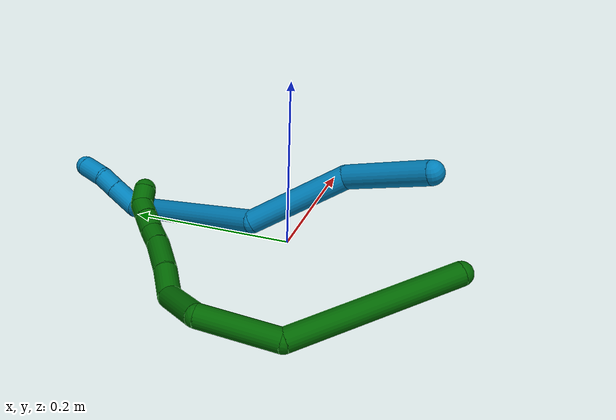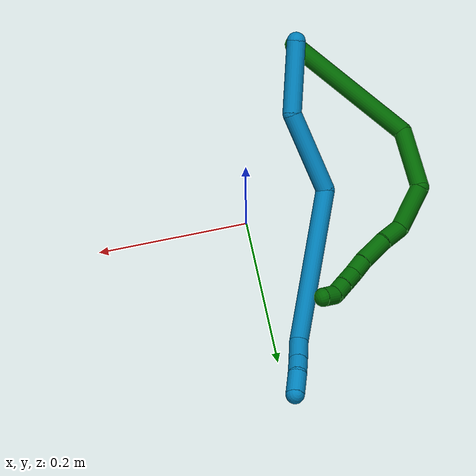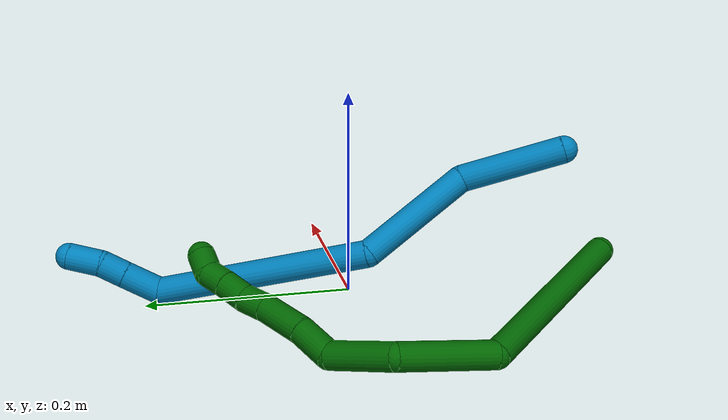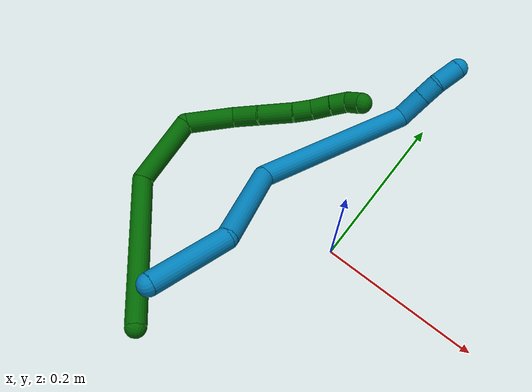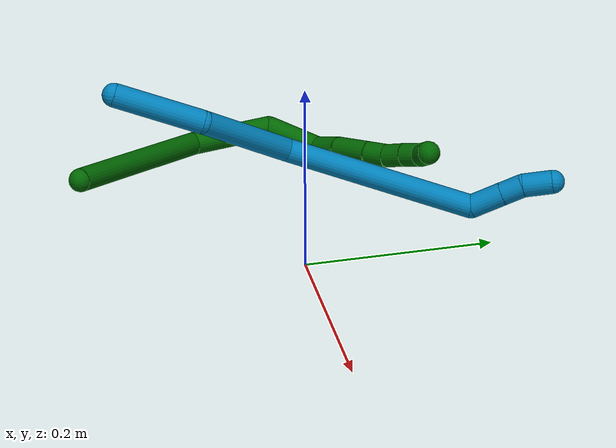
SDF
<sdf version="1.7">
 <world name="default">
  <model name="6">
   <static>0</static>
   <link name="6">
    <collision name="collision-cylinder-e_1_1_4">
     <pose>0.040332 0.073375 0.041851 -1.05244 0.44546 -0.261609</pose>
     <geometry><cylinder><radius>0.0125</radius><length>0.187212</length></cylinder></geometry>
     <surface>
      <friction><ode><mu>1.16</mu><mu2>1.16</mu2><slip1>0</slip1><slip2>0</slip2></ode></friction>
      <contact><ode><kp>1e+06</kp><kd>1</kd><max_vel>0</max_vel><min_depth>0.001</min_depth></ode></contact>
     </surface>
    </collision>
    <visual name="visual-cylinder-e_1_1_4">
     <pose>0.040332 0.073375 0.041851 -1.05244 0.44546 -0.261609</pose>
     <geometry><cylinder><radius>0.0125</radius><length>0.187212</length></cylinder></geometry>
     <material><ambient>0 0.392157 0.003922 1</ambient></material>
    </visual>
    <collision name="collision-cylinder-e_2_4_5">
     <pose>0.107637 0.17917 0.073351 -1.87987 0.670175 -0.889712</pose>
     <geometry><cylinder><radius>0.0125</radius><length>0.086851</length></cylinder></geometry>
     <surface>
      <friction><ode><mu>1.16</mu><mu2>1.16</mu2><slip1>0</slip1><slip2>0</slip2></ode></friction>
      <contact><ode><kp>1e+06</kp><kd>1</kd><max_vel>0</max_vel><min_depth>0.001</min_depth></ode></contact>
     </surface>
    </collision>
    <visual name="visual-cylinder-e_2_4_5">
     <pose>0.107637 0.17917 0.073351 -1.87987 0.670175 -0.889712</pose>
     <geometry><cylinder><radius>0.0125</radius><length>0.086851</length></cylinder></geometry>
     <material><ambient>0 0.392157 0.003922 1</ambient></material>
    </visual>
    <collision name="collision-cylinder-e_3_5_6">
     <pose>0.137129 0.231655 0.04016 -2.42076 0.082669 -0.218603</pose>
     <geometry><cylinder><radius>0.0125</radius><length>0.061011</length></cylinder></geometry>
     <surface>
      <friction><ode><mu>1.16</mu><mu2>1.16</mu2><slip1>0</slip1><slip2>0</slip2></ode></friction>
      <contact><ode><kp>1e+06</kp><kd>1</kd><max_vel>0</max_vel><min_depth>0.001</min_depth></ode></contact>
     </surface>
    </collision>
    <visual name="visual-cylinder-e_3_5_6">
     <pose>0.137129 0.231655 0.04016 -2.42076 0.082669 -0.218603</pose>
     <geometry><cylinder><radius>0.0125</radius><length>0.061011</length></cylinder></geometry>
     <material><ambient>0 0.392157 0.003922 1</ambient></material>
    </visual>
    <collision name="collision-cylinder-e_4_6_7">
     <pose>0.145161 0.253898 0.001051 -3.00854 0.324046 -2.36754</pose>
     <geometry><cylinder><radius>0.0125</radius><length>0.034632</length></cylinder></geometry>
     <surface>
      <friction><ode><mu>1.16</mu><mu2>1.16</mu2><slip1>0</slip1><slip2>0</slip2></ode></friction>
      <contact><ode><kp>1e+06</kp><kd>1</kd><max_vel>0</max_vel><min_depth>0.001</min_depth></ode></contact>
     </surface>
    </collision>
    <visual name="visual-cylinder-e_4_6_7">
     <pose>0.145161 0.253898 0.001051 -3.00854 0.324046 -2.36754</pose>
     <geometry><cylinder><radius>0.0125</radius><length>0.034632</length></cylinder></geometry>
     <material><ambient>0 0.392157 0.003922 1</ambient></material>
    </visual>
    <collision name="collision-cylinder-e_5_7_8">
     <pose>0.156084 0.261709 -0.035034 -2.86461 0.256799 -1.49429</pose>
     <geometry><cylinder><radius>0.0125</radius><length>0.042597</length></cylinder></geometry>
     <surface>
      <friction><ode><mu>1.16</mu><mu2>1.16</mu2><slip1>0</slip1><slip2>0</slip2></ode></friction>
      <contact><ode><kp>1e+06</kp><kd>1</kd><max_vel>0</max_vel><min_depth>0.001</min_depth></ode></contact>
     </surface>
    </collision>
    <visual name="visual-cylinder-e_5_7_8">
     <pose>0.156084 0.261709 -0.035034 -2.86461 0.256799 -1.49429</pose>
     <geometry><cylinder><radius>0.0125</radius><length>0.042597</length></cylinder></geometry>
     <material><ambient>0 0.392157 0.003922 1</ambient></material>
    </visual>
    <collision name="collision-cylinder-e_6_8_9">
     <pose>0.164661 0.271709 -0.065204 -2.74255 0.274669 -1.19908</pose>
     <geometry><cylinder><radius>0.0125</radius><length>0.023352</length></cylinder></geometry>
     <surface>
      <friction><ode><mu>1.16</mu><mu2>1.16</mu2><slip1>0</slip1><slip2>0</slip2></ode></friction>
      <contact><ode><kp>1e+06</kp><kd>1</kd><max_vel>0</max_vel><min_depth>0.001</min_depth></ode></contact>
     </surface>
    </collision>
    <visual name="visual-cylinder-e_6_8_9">
     <pose>0.164661 0.271709 -0.065204 -2.74255 0.274669 -1.19908</pose>
     <geometry><cylinder><radius>0.0125</radius><length>0.023352</length></cylinder></geometry>
     <material><ambient>0 0.392157 0.003922 1</ambient></material>
    </visual>
    <collision name="collision-cylinder-e_7_9_10">
     <pose>0.172749 0.278844 -0.085963 -2.88147 0.428764 -2.05965</pose>
     <geometry><cylinder><radius>0.0125</radius><length>0.023673</length></cylinder></geometry>
     <surface>
      <friction><ode><mu>1.16</mu><mu2>1.16</mu2><slip1>0</slip1><slip2>0</slip2></ode></friction>
      <contact><ode><kp>1e+06</kp><kd>1</kd><max_vel>0</max_vel><min_depth>0.001</min_depth></ode></contact>
     </surface>
    </collision>
    <visual name="visual-cylinder-e_7_9_10">
     <pose>0.172749 0.278844 -0.085963 -2.88147 0.428764 -2.05965</pose>
     <geometry><cylinder><radius>0.0125</radius><length>0.023673</length></cylinder></geometry>
     <material><ambient>0 0.392157 0.003922 1</ambient></material>
    </visual>
    <collision name="collision-cylinder-e_8_10_11">
     <pose>0.181449 0.284458 -0.105516 -2.84013 0.375654 -1.79319</pose>
     <geometry><cylinder><radius>0.0125</radius><length>0.0206</length></cylinder></geometry>
     <surface>
      <friction><ode><mu>1.16</mu><mu2>1.16</mu2><slip1>0</slip1><slip2>0</slip2></ode></friction>
      <contact><ode><kp>1e+06</kp><kd>1</kd><max_vel>0</max_vel><min_depth>0.001</min_depth></ode></contact>
     </surface>
    </collision>
    <visual name="visual-cylinder-e_8_10_11">
     <pose>0.181449 0.284458 -0.105516 -2.84013 0.375654 -1.79319</pose>
     <geometry><cylinder><radius>0.0125</radius><length>0.0206</length></cylinder></geometry>
     <material><ambient>0 0.392157 0.003922 1</ambient></material>
    </visual>
    <collision name="collision-cylinder-e_9_11_2">
     <pose>0.188242 0.284815 -0.123909 2.87869 0.305064 1.72098</pose>
     <geometry><cylinder><radius>0.0125</radius><length>0.020071</length></cylinder></geometry>
     <surface>
      <friction><ode><mu>1.16</mu><mu2>1.16</mu2><slip1>0</slip1><slip2>0</slip2></ode></friction>
      <contact><ode><kp>1e+06</kp><kd>1</kd><max_vel>0</max_vel><min_depth>0.001</min_depth></ode></contact>
     </surface>
    </collision>
    <visual name="visual-cylinder-e_9_11_2">
     <pose>0.188242 0.284815 -0.123909 2.87869 0.305064 1.72098</pose>
     <geometry><cylinder><radius>0.0125</radius><length>0.020071</length></cylinder></geometry>
     <material><ambient>0 0.392157 0.003922 1</ambient></material>
    </visual>
    <collision name="collision-sphere-2">
     <pose>0.191256 0.282328 -0.133152 0 -0 0</pose>
     <geometry><sphere><radius>0.0125</radius></sphere></geometry>
     <surface>
      <friction><ode><mu>1.16</mu><mu2>1.16</mu2><slip1>0</slip1><slip2>0</slip2></ode></friction>
      <contact><ode><kp>1e+06</kp><kd>1</kd><max_vel>0</max_vel><min_depth>0.001</min_depth></ode></contact>
     </surface>
    </collision>
    <visual name="visual-sphere-2">
     <pose>0.191256 0.282328 -0.133152 0 -0 0</pose>
     <geometry><sphere><radius>0.0125</radius></sphere></geometry>
     <material><ambient>0 0.392157 0.003922 1</ambient></material>
    </visual>
    <collision name="collision-sphere-11">
     <pose>0.185228 0.287303 -0.114665 0 -0 0</pose>
     <geometry><sphere><radius>0.0125</radius></sphere></geometry>
     <surface>
      <friction><ode><mu>1.16</mu><mu2>1.16</mu2><slip1>0</slip1><slip2>0</slip2></ode></friction>
      <contact><ode><kp>1e+06</kp><kd>1</kd><max_vel>0</max_vel><min_depth>0.001</min_depth></ode></contact>
     </surface>
    </collision>
    <visual name="visual-sphere-11">
     <pose>0.185228 0.287303 -0.114665 0 -0 0</pose>
     <geometry><sphere><radius>0.0125</radius></sphere></geometry>
     <material><ambient>0 0.392157 0.003922 1</ambient></material>
    </visual>
    <collision name="collision-sphere-10">
     <pose>0.17767 0.281613 -0.096366 0 -0 0</pose>
     <geometry><sphere><radius>0.0125</radius></sphere></geometry>
     <surface>
      <friction><ode><mu>1.16</mu><mu2>1.16</mu2><slip1>0</slip1><slip2>0</slip2></ode></friction>
      <contact><ode><kp>1e+06</kp><kd>1</kd><max_vel>0</max_vel><min_depth>0.001</min_depth></ode></contact>
     </surface>
    </collision>
    <visual name="visual-sphere-10">
     <pose>0.17767 0.281613 -0.096366 0 -0 0</pose>
     <geometry><sphere><radius>0.0125</radius></sphere></geometry>
     <material><ambient>0 0.392157 0.003922 1</ambient></material>
    </visual>
    <collision name="collision-sphere-9">
     <pose>0.167828 0.276075 -0.07556 0 -0 0</pose>
     <geometry><sphere><radius>0.0125</radius></sphere></geometry>
     <surface>
      <friction><ode><mu>1.16</mu><mu2>1.16</mu2><slip1>0</slip1><slip2>0</slip2></ode></friction>
      <contact><ode><kp>1e+06</kp><kd>1</kd><max_vel>0</max_vel><min_depth>0.001</min_depth></ode></contact>
     </surface>
    </collision>
    <visual name="visual-sphere-9">
     <pose>0.167828 0.276075 -0.07556 0 -0 0</pose>
     <geometry><sphere><radius>0.0125</radius></sphere></geometry>
     <material><ambient>0 0.392157 0.003922 1</ambient></material>
    </visual>
    <collision name="collision-sphere-4">
     <pose>0.080664 0.146749 0.083703 0 -0 0</pose>
     <geometry><sphere><radius>0.0125</radius></sphere></geometry>
     <surface>
      <friction><ode><mu>1.16</mu><mu2>1.16</mu2><slip1>0</slip1><slip2>0</slip2></ode></friction>
      <contact><ode><kp>1e+06</kp><kd>1</kd><max_vel>0</max_vel><min_depth>0.001</min_depth></ode></contact>
     </surface>
    </collision>
    <visual name="visual-sphere-4">
     <pose>0.080664 0.146749 0.083703 0 -0 0</pose>
     <geometry><sphere><radius>0.0125</radius></sphere></geometry>
     <material><ambient>0 0.392157 0.003922 1</ambient></material>
    </visual>
    <collision name="collision-sphere-1">
     <geometry><sphere><radius>0.0125</radius></sphere></geometry>
     <surface>
      <friction><ode><mu>1.16</mu><mu2>1.16</mu2><slip1>0</slip1><slip2>0</slip2></ode></friction>
      <contact><ode><kp>1e+06</kp><kd>1</kd><max_vel>0</max_vel><min_depth>0.001</min_depth></ode></contact>
     </surface>
    </collision>
    <visual name="visual-sphere-1">
     <geometry><sphere><radius>0.0125</radius></sphere></geometry>
     <material><ambient>0 0.392157 0.003922 1</ambient></material>
    </visual>
    <collision name="collision-sphere-8">
     <pose>0.161494 0.267342 -0.054849 0 -0 0</pose>
     <geometry><sphere><radius>0.0125</radius></sphere></geometry>
     <surface>
      <friction><ode><mu>1.16</mu><mu2>1.16</mu2><slip1>0</slip1><slip2>0</slip2></ode></friction>
      <contact><ode><kp>1e+06</kp><kd>1</kd><max_vel>0</max_vel><min_depth>0.001</min_depth></ode></contact>
     </surface>
    </collision>
    <visual name="visual-sphere-8">
     <pose>0.161494 0.267342 -0.054849 0 -0 0</pose>
     <geometry><sphere><radius>0.0125</radius></sphere></geometry>
     <material><ambient>0 0.392157 0.003922 1</ambient></material>
    </visual>
    <collision name="collision-sphere-5">
     <pose>0.13461 0.21159 0.062999 0 -0 0</pose>
     <geometry><sphere><radius>0.0125</radius></sphere></geometry>
     <surface>
      <friction><ode><mu>1.16</mu><mu2>1.16</mu2><slip1>0</slip1><slip2>0</slip2></ode></friction>
      <contact><ode><kp>1e+06</kp><kd>1</kd><max_vel>0</max_vel><min_depth>0.001</min_depth></ode></contact>
     </surface>
    </collision>
    <visual name="visual-sphere-5">
     <pose>0.13461 0.21159 0.062999 0 -0 0</pose>
     <geometry><sphere><radius>0.0125</radius></sphere></geometry>
     <material><ambient>0 0.392157 0.003922 1</ambient></material>
    </visual>
    <collision name="collision-sphere-6">
     <pose>0.139648 0.251721 0.017321 0 -0 0</pose>
     <geometry><sphere><radius>0.0125</radius></sphere></geometry>
     <surface>
      <friction><ode><mu>1.16</mu><mu2>1.16</mu2><slip1>0</slip1><slip2>0</slip2></ode></friction>
      <contact><ode><kp>1e+06</kp><kd>1</kd><max_vel>0</max_vel><min_depth>0.001</min_depth></ode></contact>
     </surface>
    </collision>
    <visual name="visual-sphere-6">
     <pose>0.139648 0.251721 0.017321 0 -0 0</pose>
     <geometry><sphere><radius>0.0125</radius></sphere></geometry>
     <material><ambient>0 0.392157 0.003922 1</ambient></material>
    </visual>
    <collision name="collision-sphere-7">
     <pose>0.150675 0.256076 -0.015219 0 -0 0</pose>
     <geometry><sphere><radius>0.0125</radius></sphere></geometry>
     <surface>
      <friction><ode><mu>1.16</mu><mu2>1.16</mu2><slip1>0</slip1><slip2>0</slip2></ode></friction>
      <contact><ode><kp>1e+06</kp><kd>1</kd><max_vel>0</max_vel><min_depth>0.001</min_depth></ode></contact>
     </surface>
    </collision>
    <visual name="visual-sphere-7">
     <pose>0.150675 0.256076 -0.015219 0 -0 0</pose>
     <geometry><sphere><radius>0.0125</radius></sphere></geometry>
     <material><ambient>0 0.392157 0.003922 1</ambient></material>
    </visual>
    <inertial>
     <pose>0.104785 0.17579 0.013963 0 -0 0</pose>
     <mass>0.5</mass>
     <inertia>
      <ixx>0.00036</ixx>
      <ixy>0</ixy>
      <ixz>0</ixz>
      <iyy>0.000162</iyy>
      <iyz>0</iyz>
      <izz>-0.000789</izz>
     </inertia>
    </inertial>
   </link>
   <pose>-0.111505 -0.213929 0.066166 -1.84822 -0.918501 2.05595</pose>
  </model>
  <model name="9">
   <static>0</static>
   <link name="9">
    <collision name="collision-cylinder-e_1_1_4">
     <pose>0.043448 0.017124 0.010569 -1.01782 1.13706 -0.684837</pose>
     <geometry><cylinder><radius>0.0125</radius><length>0.095763</length></cylinder></geometry>
     <surface>
      <friction><ode><mu>1.16</mu><mu2>1.16</mu2><slip1>0</slip1><slip2>0</slip2></ode></friction>
      <contact><ode><kp>1e+06</kp><kd>1</kd><max_vel>0</max_vel><min_depth>0.001</min_depth></ode></contact>
     </surface>
    </collision>
    <visual name="visual-cylinder-e_1_1_4">
     <pose>0.043448 0.017124 0.010569 -1.01782 1.13706 -0.684837</pose>
     <geometry><cylinder><radius>0.0125</radius><length>0.095763</length></cylinder></geometry>
     <material><ambient>0 0.490196 0.709804 1</ambient></material>
    </visual>
    <collision name="collision-cylinder-e_2_4_5">
     <pose>0.139647 0.024861 0.035412 0.581674 1.25759 0.428694</pose>
     <geometry><cylinder><radius>0.0125</radius><length>0.110898</length></cylinder></geometry>
     <surface>
      <friction><ode><mu>1.16</mu><mu2>1.16</mu2><slip1>0</slip1><slip2>0</slip2></ode></friction>
      <contact><ode><kp>1e+06</kp><kd>1</kd><max_vel>0</max_vel><min_depth>0.001</min_depth></ode></contact>
     </surface>
    </collision>
    <visual name="visual-cylinder-e_2_4_5">
     <pose>0.139647 0.024861 0.035412 0.581674 1.25759 0.428694</pose>
     <geometry><cylinder><radius>0.0125</radius><length>0.110898</length></cylinder></geometry>
     <material><ambient>0 0.490196 0.709804 1</ambient></material>
    </visual>
    <collision name="collision-cylinder-e_3_5_6">
     <pose>0.279054 0.06358 0.071076 -1.15243 1.02486 -0.70088</pose>
     <geometry><cylinder><radius>0.0125</radius><length>0.202789</length></cylinder></geometry>
     <surface>
      <friction><ode><mu>1.16</mu><mu2>1.16</mu2><slip1>0</slip1><slip2>0</slip2></ode></friction>
      <contact><ode><kp>1e+06</kp><kd>1</kd><max_vel>0</max_vel><min_depth>0.001</min_depth></ode></contact>
     </surface>
    </collision>
    <visual name="visual-cylinder-e_3_5_6">
     <pose>0.279054 0.06358 0.071076 -1.15243 1.02486 -0.70088</pose>
     <geometry><cylinder><radius>0.0125</radius><length>0.202789</length></cylinder></geometry>
     <material><ambient>0 0.490196 0.709804 1</ambient></material>
    </visual>
    <collision name="collision-cylinder-e_4_6_7">
     <pose>0.378235 0.121362 0.083937 -2.29317 0.770769 -1.46367</pose>
     <geometry><cylinder><radius>0.0125</radius><length>0.035956</length></cylinder></geometry>
     <surface>
      <friction><ode><mu>1.16</mu><mu2>1.16</mu2><slip1>0</slip1><slip2>0</slip2></ode></friction>
      <contact><ode><kp>1e+06</kp><kd>1</kd><max_vel>0</max_vel><min_depth>0.001</min_depth></ode></contact>
     </surface>
    </collision>
    <visual name="visual-cylinder-e_4_6_7">
     <pose>0.378235 0.121362 0.083937 -2.29317 0.770769 -1.46367</pose>
     <geometry><cylinder><radius>0.0125</radius><length>0.035956</length></cylinder></geometry>
     <material><ambient>0 0.490196 0.709804 1</ambient></material>
    </visual>
    <collision name="collision-cylinder-e_5_7_8">
     <pose>0.398821 0.137528 0.069903 -2.27439 0.758165 -1.42099</pose>
     <geometry><cylinder><radius>0.0125</radius><length>0.023446</length></cylinder></geometry>
     <surface>
      <friction><ode><mu>1.16</mu><mu2>1.16</mu2><slip1>0</slip1><slip2>0</slip2></ode></friction>
      <contact><ode><kp>1e+06</kp><kd>1</kd><max_vel>0</max_vel><min_depth>0.001</min_depth></ode></contact>
     </surface>
    </collision>
    <visual name="visual-cylinder-e_5_7_8">
     <pose>0.398821 0.137528 0.069903 -2.27439 0.758165 -1.42099</pose>
     <geometry><cylinder><radius>0.0125</radius><length>0.023446</length></cylinder></geometry>
     <material><ambient>0 0.490196 0.709804 1</ambient></material>
    </visual>
    <collision name="collision-cylinder-e_6_8_2">
     <pose>0.419355 0.152659 0.060888 -1.95653 0.928857 -1.27949</pose>
     <geometry><cylinder><radius>0.0125</radius><length>0.031148</length></cylinder></geometry>
     <surface>
      <friction><ode><mu>1.16</mu><mu2>1.16</mu2><slip1>0</slip1><slip2>0</slip2></ode></friction>
      <contact><ode><kp>1e+06</kp><kd>1</kd><max_vel>0</max_vel><min_depth>0.001</min_depth></ode></contact>
     </surface>
    </collision>
    <visual name="visual-cylinder-e_6_8_2">
     <pose>0.419355 0.152659 0.060888 -1.95653 0.928857 -1.27949</pose>
     <geometry><cylinder><radius>0.0125</radius><length>0.031148</length></cylinder></geometry>
     <material><ambient>0 0.490196 0.709804 1</ambient></material>
    </visual>
    <collision name="collision-sphere-2">
     <pose>0.431829 0.161298 0.057379 0 -0 0</pose>
     <geometry><sphere><radius>0.0125</radius></sphere></geometry>
     <surface>
      <friction><ode><mu>1.16</mu><mu2>1.16</mu2><slip1>0</slip1><slip2>0</slip2></ode></friction>
      <contact><ode><kp>1e+06</kp><kd>1</kd><max_vel>0</max_vel><min_depth>0.001</min_depth></ode></contact>
     </surface>
    </collision>
    <visual name="visual-sphere-2">
     <pose>0.431829 0.161298 0.057379 0 -0 0</pose>
     <geometry><sphere><radius>0.0125</radius></sphere></geometry>
     <material><ambient>0 0.490196 0.709804 1</ambient></material>
    </visual>
    <collision name="collision-sphere-4">
     <pose>0.086895 0.034247 0.021138 0 -0 0</pose>
     <geometry><sphere><radius>0.0125</radius></sphere></geometry>
     <surface>
      <friction><ode><mu>1.16</mu><mu2>1.16</mu2><slip1>0</slip1><slip2>0</slip2></ode></friction>
      <contact><ode><kp>1e+06</kp><kd>1</kd><max_vel>0</max_vel><min_depth>0.001</min_depth></ode></contact>
     </surface>
    </collision>
    <visual name="visual-sphere-4">
     <pose>0.086895 0.034247 0.021138 0 -0 0</pose>
     <geometry><sphere><radius>0.0125</radius></sphere></geometry>
     <material><ambient>0 0.490196 0.709804 1</ambient></material>
    </visual>
    <collision name="collision-sphere-1">
     <geometry><sphere><radius>0.0125</radius></sphere></geometry>
     <surface>
      <friction><ode><mu>1.16</mu><mu2>1.16</mu2><slip1>0</slip1><slip2>0</slip2></ode></friction>
      <contact><ode><kp>1e+06</kp><kd>1</kd><max_vel>0</max_vel><min_depth>0.001</min_depth></ode></contact>
     </surface>
    </collision>
    <visual name="visual-sphere-1">
     <geometry><sphere><radius>0.0125</radius></sphere></geometry>
     <material><ambient>0 0.490196 0.709804 1</ambient></material>
    </visual>
    <collision name="collision-sphere-8">
     <pose>0.406881 0.144019 0.064396 0 -0 0</pose>
     <geometry><sphere><radius>0.0125</radius></sphere></geometry>
     <surface>
      <friction><ode><mu>1.16</mu><mu2>1.16</mu2><slip1>0</slip1><slip2>0</slip2></ode></friction>
      <contact><ode><kp>1e+06</kp><kd>1</kd><max_vel>0</max_vel><min_depth>0.001</min_depth></ode></contact>
     </surface>
    </collision>
    <visual name="visual-sphere-8">
     <pose>0.406881 0.144019 0.064396 0 -0 0</pose>
     <geometry><sphere><radius>0.0125</radius></sphere></geometry>
     <material><ambient>0 0.490196 0.709804 1</ambient></material>
    </visual>
    <collision name="collision-sphere-5">
     <pose>0.192398 0.015474 0.049687 0 -0 0</pose>
     <geometry><sphere><radius>0.0125</radius></sphere></geometry>
     <surface>
      <friction><ode><mu>1.16</mu><mu2>1.16</mu2><slip1>0</slip1><slip2>0</slip2></ode></friction>
      <contact><ode><kp>1e+06</kp><kd>1</kd><max_vel>0</max_vel><min_depth>0.001</min_depth></ode></contact>
     </surface>
    </collision>
    <visual name="visual-sphere-5">
     <pose>0.192398 0.015474 0.049687 0 -0 0</pose>
     <geometry><sphere><radius>0.0125</radius></sphere></geometry>
     <material><ambient>0 0.490196 0.709804 1</ambient></material>
    </visual>
    <collision name="collision-sphere-6">
     <pose>0.36571 0.111686 0.092464 0 -0 0</pose>
     <geometry><sphere><radius>0.0125</radius></sphere></geometry>
     <surface>
      <friction><ode><mu>1.16</mu><mu2>1.16</mu2><slip1>0</slip1><slip2>0</slip2></ode></friction>
      <contact><ode><kp>1e+06</kp><kd>1</kd><max_vel>0</max_vel><min_depth>0.001</min_depth></ode></contact>
     </surface>
    </collision>
    <visual name="visual-sphere-6">
     <pose>0.36571 0.111686 0.092464 0 -0 0</pose>
     <geometry><sphere><radius>0.0125</radius></sphere></geometry>
     <material><ambient>0 0.490196 0.709804 1</ambient></material>
    </visual>
    <collision name="collision-sphere-7">
     <pose>0.39076 0.131037 0.07541 0 -0 0</pose>
     <geometry><sphere><radius>0.0125</radius></sphere></geometry>
     <surface>
      <friction><ode><mu>1.16</mu><mu2>1.16</mu2><slip1>0</slip1><slip2>0</slip2></ode></friction>
      <contact><ode><kp>1e+06</kp><kd>1</kd><max_vel>0</max_vel><min_depth>0.001</min_depth></ode></contact>
     </surface>
    </collision>
    <visual name="visual-sphere-7">
     <pose>0.39076 0.131037 0.07541 0 -0 0</pose>
     <geometry><sphere><radius>0.0125</radius></sphere></geometry>
     <material><ambient>0 0.490196 0.709804 1</ambient></material>
    </visual>
    <inertial>
     <pose>0.224498 0.059267 0.051812 0 -0 0</pose>
     <mass>0.5</mass>
     <inertia>
      <ixx>0.000124</ixx>
      <ixy>0</ixy>
      <ixz>0</ixz>
      <iyy>0.000526</iyy>
      <iyz>0</iyz>
      <izz>-0.001133</izz>
     </inertia>
    </inertial>
   </link>
   <pose>-0.104758 -0.175182 0.163834 2.82999 0.230467 1.74279</pose>
  </model>
 </world>
</sdf>
